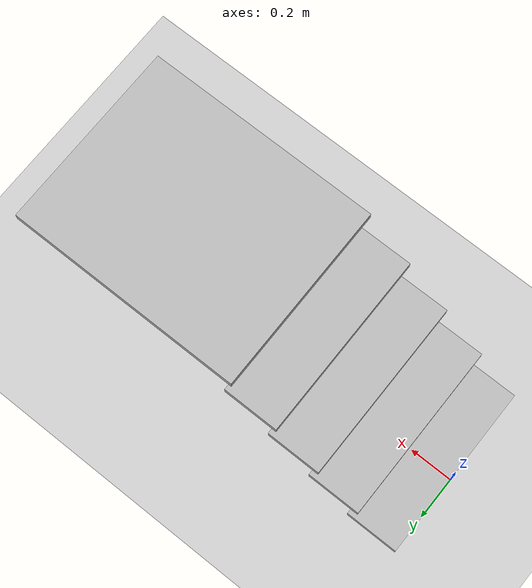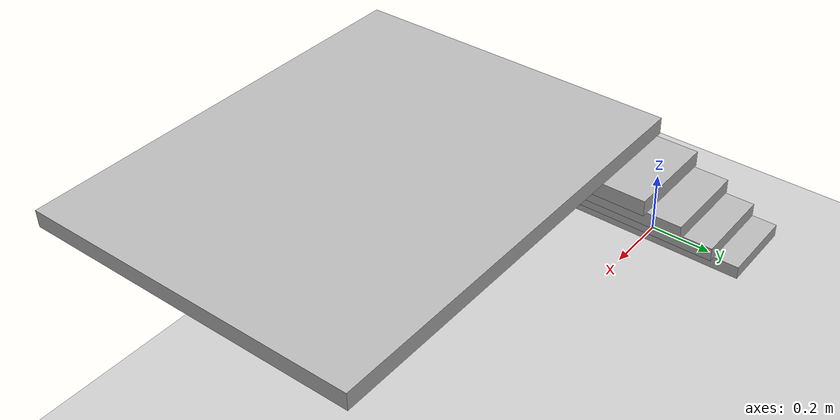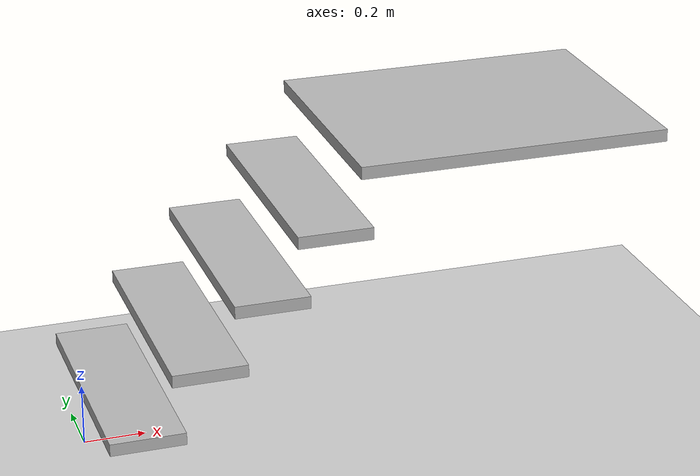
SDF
<?xml version="1.0" ?>
<sdf version="1.4">
  <world name="default">
    <include>
      <uri>model://ground_plane</uri>
    </include>
    <include>
      <uri>model://sun</uri>
    </include>
    <include>
      <uri>model://gazebo_worlds/models/stairs_200x200</uri>
    </include>
    <physics type="ode">
      <gravity>0 0 -9.81</gravity>
    </physics>
  </world>
</sdf>

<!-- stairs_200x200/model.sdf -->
<sdf version='1.4'>
  <model name="stairs_200x200">
    <static>true</static>
    <pose>0 0 0 0 0 0</pose>

    <link name='step_1'>
      <pose>0.12 0 0.18 0 0 0</pose>
      <collision name='collision'>
        <geometry>
          <box>
            <size>0.24 0.8 0.04</size>
          </box>
        </geometry>
      </collision>
      <visual name='visual'>
        <geometry>
          <box>
            <size>0.24 0.8 0.04</size>
          </box>
        </geometry>
      </visual>
    </link>

    <link name='step_2'>
      <pose>0.32 0 0.38 0 0 0</pose>
      <collision name='collision'>
        <geometry>
          <box>
            <size>0.24 0.8 0.04</size>
          </box>
        </geometry>
      </collision>
      <visual name='visual'>
        <geometry>
          <box>
            <size>0.24 0.8 0.04</size>
          </box>
        </geometry>
      </visual>
    </link>

    <link name='step_3'>
      <pose>0.52 0 0.58 0 0 0</pose>
      <collision name='collision'>
        <geometry>
          <box>
            <size>0.24 0.8 0.04</size>
          </box>
        </geometry>
      </collision>
      <visual name='visual'>
        <geometry>
          <box>
            <size>0.24 0.8 0.04</size>
          </box>
        </geometry>
      </visual>
    </link>

    <link name='step_4'>
      <pose>0.72 0 0.78 0 0 0</pose>
      <collision name='collision'>
        <geometry>
          <box>
            <size>0.24 0.8 0.04</size>
          </box>
        </geometry>
      </collision>
      <visual name='visual'>
        <geometry>
          <box>
            <size>0.24 0.8 0.04</size>
          </box>
        </geometry>
      </visual>
    </link>

    <link name='top'>
      <pose>1.3 0 0.98 0 0 0</pose>
      <collision name='collision'>
        <geometry>
          <box>
            <size>1.0 0.8 0.04</size>
          </box>
        </geometry>
      </collision>
      <visual name='visual'>
        <geometry>
          <box>
            <size>1.0 0.8 0.04</size>
          </box>
        </geometry>
      </visual>
    </link>

  </model>
</sdf>
